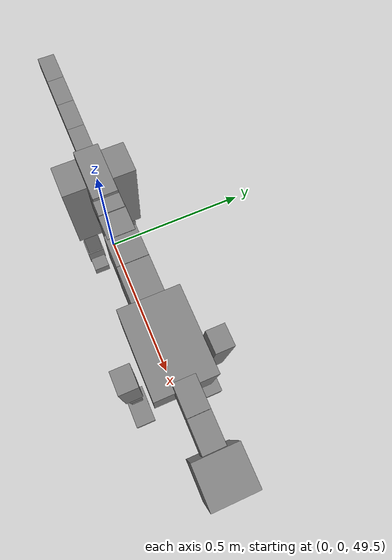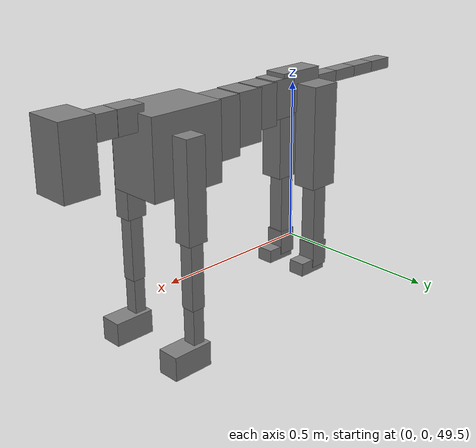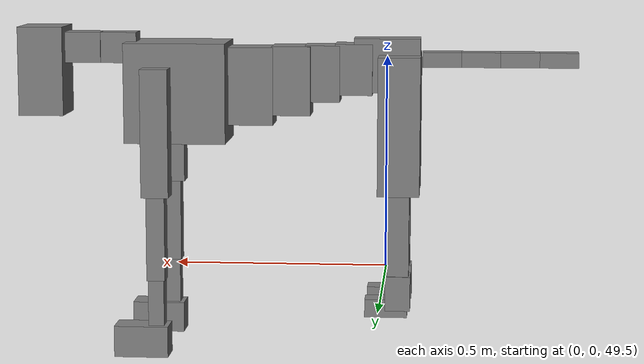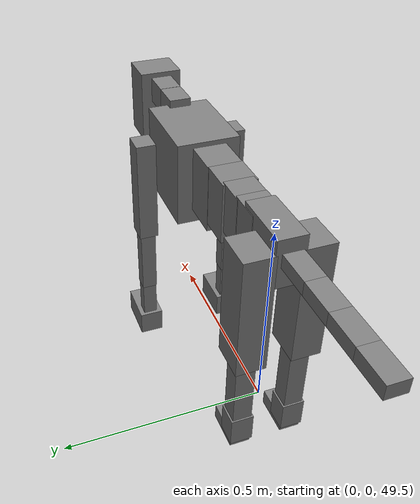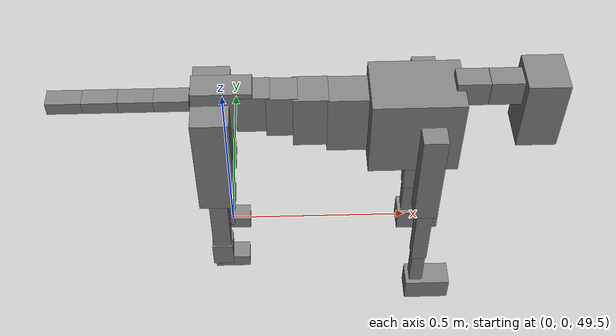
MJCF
<mujoco model="dog">

    <default>
        <joint armature="0.02" stiffness="1" damping="0.2" limited="true"/>
        <geom condim="3" friction="1 0.05 0.05" margin="0.01"/>
        <motor ctrllimited="true" ctrlrange="-1.0 1.0" forcelimited="true" gear="50"/>
    </default>

    <compiler inertiafromgeom="true" angle="radian"/>

    <option timestep="0.016" iterations="50" tolerance="1e-10" solver="Newton" jacobian="dense" cone="pyramidal"/>

    <size nconmax="20000" njmax="60000" nstack="5000000"/>
    <visual>
        <map force="0.1" zfar="30"/>
        <rgba haze="0.15 0.25 0.35 1"/>
        <quality shadowsize="2048"/>
        <global offwidth="800" offheight="800"/>
    </visual>

    <asset>
        <texture type="skybox" builtin="gradient" rgb1="0.3 0.5 0.7" rgb2="0 0 0" width="512" height="512"/>
        <texture name="texplane" type="2d" builtin="checker" rgb1=".2 .3 .4" rgb2=".1 0.15 0.2" width="512" height="512"
                 mark="cross" markrgb=".8 .8 .8"/>
        <texture name="texgeom" type="cube" builtin="flat" mark="cross" width="127" height="1278" rgb1="0.8 0.6 0.4"
                 rgb2="0.8 0.6 0.4" markrgb="1 1 1" random="0.01"/>

        <material name="matplane" reflectance="0.3" texture="texplane" texrepeat="1 1" texuniform="true"/>
        <material name="matgeom" texture="texgeom" texuniform="true" rgba="0.8 0.6 .4 1"/>
    </asset>

    <worldbody>
        <geom name="floor" pos="0 0 0" size="0 0 .25" type="plane" material="matplane" condim="3"/>

        <light directional="false" diffuse=".2 .2 .2" specular="0 0 0" pos="0 0 5" dir="0 0 -1" castshadow="false"/>
        <light mode="targetbodycom" target="torso" directional="false" diffuse=".8 .8 .8" specular="0.3 0.3 0.3"
               pos="0 0 4.0" dir="0 0 -1"/>

        <body name="root" pos="0 0 50">
            <freejoint name="root_1"/>
            <geom type="box" pos="0 0 -0.02" size="0.0774  0.0358  0.063" density="2030"/>

            <body name="spine1" pos="0.054 0 0">
                <joint name="spine1_y" axis="0 1 0" range="0 0.7" limited="true"/>
                <geom type="box" pos="0.02375 0 -0.03" size="0.04375  0.0375  0.05985" density="2030"/>

                <body name="spine2" pos="0.0612 0 0">
                    <joint name="spine2_y" axis="0 1 0" range="-0.15 0.15" limited="true"/>
                    <geom type="box" pos="0.03555  0  -0.04" size="0.04055  0.039  0.06615" density="2030"/>

                    <body name="spine3" pos="0.0730 0 0">
                        <joint name="spine3_y" axis="0 1 0" range="-0.15 0.15" limited="true"/>
                        <geom type="box" pos="0.03555  0  -0.057" size="0.04555  0.0445  0.081" density="2030"/>

                        <body name="spine4" pos="0.0780 0 0">
                            <joint name="spine4_y" axis="0 1 0" range="-0.15 0.15" limited="true"/>
                            <geom type="box" pos="0.05265  0  -0.07" size="0.05265  0.045  0.09135" density="2030"/>

                            <body name="torso" pos="0.1082 0 0">
                                <joint name="torso_y" axis="0 1 0" range="-0.15 0.15" limited="true"/>
                                <geom type="box" pos="0.11925  0  -0.085" size="0.11925  0.085  0.11745"
                                      density="2030"/>

                                <body name="neck1" pos="0.2160  0   0.0180">
                                    <joint name="neck1_y" axis="0 1 0" range="-1.2  -1" limited="true"/>
                                    <geom type="box" pos="0.0423  0  0" size="0.0423  0.03  0.036" density="2325"/>

                                    <body name="neck2" pos="0.0853  0  0">
                                        <joint name="neck2_y" axis="0 1 0" range="0.1  0" limited="true"/>
                                        <geom type="box" pos="0.0423  0  0" size="0.0423  0.03  0.036" density="2325"/>

                                        <body name="head" pos="0.0853  0  0">
                                            <joint name="head_y" axis="0 1 0" range="-0.3  -0.2" limited="true"/>
                                            <geom type="box" pos="0.0531  0  -0.055" size="0.0531  0.06  0.1044"
                                                  density="4030"/>

                                        </body>
                                    </body>
                                </body>

                                <body name="front_shoulder" pos="0.156  0   -0.0480">
                                    <joint name="front_shoulder_y" axis="0 1 0" range="-1 1.5" limited="true"/>
                                    <geom type="box" pos="0 0.13 -0.1224" size="0.0319  0.0273  0.1490" density="1158"/>
                                    <geom type="box" pos="0 -0.13 -0.1224" size="0.0319  0.0273  0.1490"
                                          density="1158"/>

                                    <body name="front_elbow" pos="0  0  -0.2448">
                                        <joint name="front_elbow_y" axis="0 1 0" range="-2 0" limited="true"/>
                                        <geom type="box" pos="0 0.13 -0.1112" size="0.0214  0.0218  0.1112"
                                              density="1081"/>
                                        <geom type="box" pos="0 -0.13 -0.1112" size="0.0214  0.0218  0.1112"
                                              density="1081"/>

                                        <body name="front_wrist" pos="0  0  -0.2223">
                                            <joint name="front_wrist_y" axis="0 1 0" range="-0.2 0" limited="true"/>
                                            <geom type="box" pos="0 0.13 -0.0609" size="0.0184  0.0205  0.0741"
                                                  density="1664"/>
                                            <geom type="box" pos="0 -0.13 -0.0609" size="0.0184  0.0205  0.0741"
                                                  density="1664"/>

                                            <body name="front_finger_end" pos="0  0  -0.1219">
                                                <joint name="front_finger_y" axis="0 1 0" range="-0.4 1"
                                                       limited="true"/>
                                                <geom type="box" pos="0.0345  0.13  -0.0215"
                                                      size="0.0632  0.0345  0.0365" density="1515"/>
                                                <geom type="box" pos="0.0345  -0.13  -0.0215"
                                                      size="0.0632  0.0345  0.0365" density="1515"/>

                                            </body>

                                        </body>
                                    </body>
                                </body>

                            </body>
                        </body>
                    </body>
                </body>
            </body>

            <body name="back_hip" pos="-0.03 0 -0.018">
                <joint name="back_hip_y" axis="0 1 0" range="-1.5 0.3" limited="true"/>
                <geom type="box" pos="0 0.07 -0.1383" size="0.0488  0.0383  0.1611" density="1154"/>
                <geom type="box" pos="0 -0.07 -0.1383" size="0.0488  0.0383  0.1611" density="1154"/>

                <body name="back_knee" pos="0  0  -0.2765">
                    <joint name="back_knee_y" axis="0 1 0" range="0 2.8" limited="true"/>
                    <geom type="box" pos="0 0.07 -0.1120" size="0.0254  0.0250  0.1275" density="1227"/>
                    <geom type="box" pos="0 -0.07 -0.1120" size="0.0254  0.0250  0.1275" density="1227"/>

                    <body name="back_ankle" pos="0  0  -0.2240">
                        <joint name="back_ankle_y" axis="0 1 0" range="-2.2 0" limited="true"/>
                        <geom type="box" pos="0 0.07 -0.0292" size="0.0293  0.0293  0.0405" density="1284"/>
                        <geom type="box" pos="0 -0.07 -0.0292" size="0.0293  0.0293  0.0405" density="1284"/>

                        <body name="back_toe_end" pos="0  0  -0.0584">
                            <joint name="back_toe_y" axis="0 1 0" range="-0.4 1" limited="true"/>
                            <geom type="box" pos="0.0270  0.07  -0.0062" size="0.0495  0.0270  0.0212" density="1515"/>
                            <geom type="box" pos="0.0270  -0.07  -0.0062" size="0.0495  0.0270  0.0212" density="1515"/>

                        </body>
                    </body>
                </body>
            </body>

            <body name="tail1" pos="-0.074 0 -0.006">
                <joint name="tail1_y" axis="0 1 0" range="-0.2 0.2" limited="true"/>
                <geom type="box" pos="-0.0536  0  0" size="0.045  0.025  0.0175" density="1587"/>

                <body name="tail2" pos="-0.09 0 0">
                    <joint name="tail2_y" axis="0 1 0" range="-0.2 0.2" limited="true"/>
                    <geom type="box" pos="-0.0536  0  0" size="0.045  0.025  0.0175" density="1587"/>

                    <body name="tail3" pos="-0.09 0 0">
                        <joint name="tail3_y" axis="0 1 0" range="-0.2 0.2" limited="true"/>
                        <geom type="box" pos="-0.0536  0  0" size="0.045  0.025  0.0175" density="1587"/>

                        <body name="tail4" pos="-0.09 0 0">
                            <joint name="tail4_y" axis="0 1 0" range="-0.2 0.2" limited="true"/>
                            <geom type="box" pos="-0.0536  0  0" size="0.045  0.025  0.0175" density="1587"/>

                        </body>
                    </body>
                </body>
            </body>
        </body>
    </worldbody>

    <actuator>
        <motor joint="spine1_y" forcerange="-150 150     "/>
        <motor joint="spine2_y" forcerange="-150 150     "/>
        <motor joint="spine3_y" forcerange="-150 150     "/>
        <motor joint="spine4_y" forcerange="-150 150     "/>
        <motor joint="torso_y" forcerange="-150 150     "/>
        <motor joint="neck1_y" forcerange="-100 100       "/>
        <motor joint="neck2_y" forcerange="-100 100       "/>
        <motor joint="head_y" forcerange="-150 150       "/>
        <motor joint="front_shoulder_y" forcerange="-119.42 162.63"/>
        <motor joint="front_elbow_y" forcerange="-127.47 131.43"/>
        <motor joint="front_wrist_y" forcerange="-56.37 107.38"/>
        <motor joint="front_finger_y" forcerange="-88.80 54.98"/>
        <motor joint="back_hip_y" forcerange="-383.46 326.99"/>
        <motor joint="back_knee_y" forcerange="-210.16 354.07"/>
        <motor joint="back_angle_y" forcerange="-168.51 201.01"/>
        <motor joint="back_toe_y" forcerange="-105.02 30.81"/>
        <motor joint="tail1_y" forcerange="-50 50     "/>
        <motor joint="tail2_y" forcerange="-50 50     "/>
        <motor joint="tail3_y" forcerange="-50 50     "/>
        <motor joint="tail4_y" forcerange="-50 50     "/>
    </actuator>
</mujoco>
